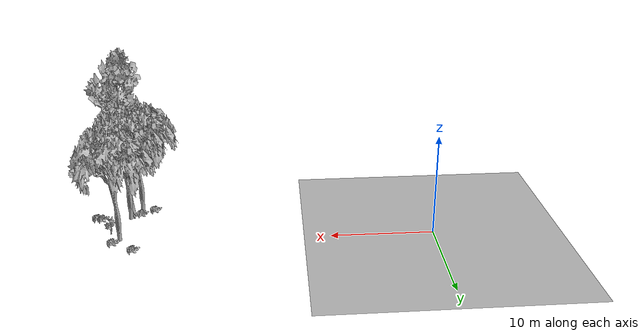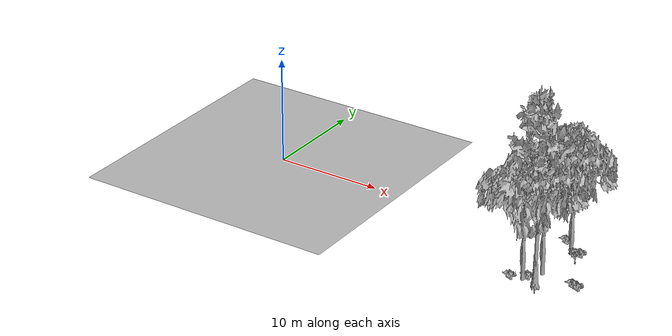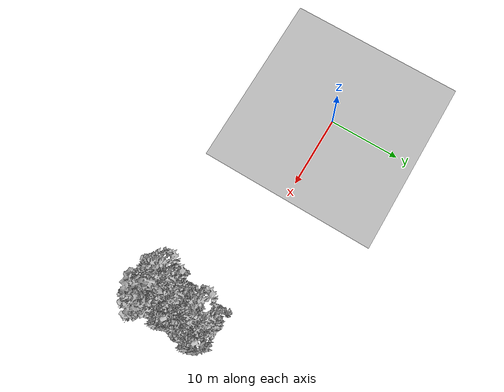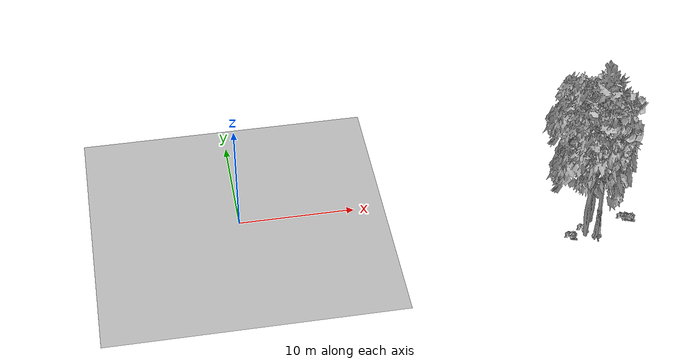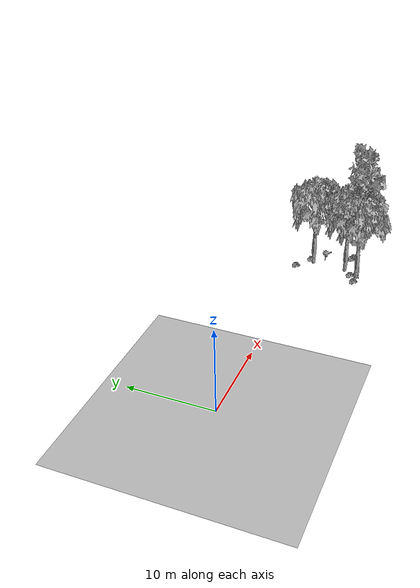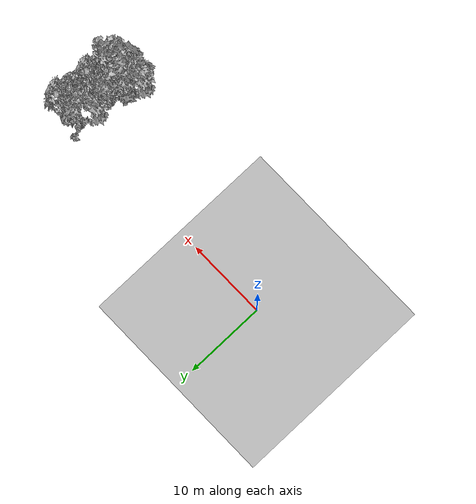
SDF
<sdf version="1.7">
 <world name="default">
  <model name="ground_plane">
   <static>1</static>
   <link name="link">
    <collision name="collision">
     <pose>-50 0 0 0 -0 0</pose>
     <geometry><plane><normal>0 0 1</normal><size>80 80</size></plane></geometry>
     <surface><contact><ode><min_depth>0.01</min_depth><max_vel>0</max_vel></ode></contact></surface>
    </collision>
    <visual name="grass">
     <cast_shadows>0</cast_shadows>
     <geometry>
      <mesh>
       <scale>0.46714285714285714 0.46714285714285714 0.1</scale>
       <uri>file://grass_plane/meshes/grass_plane.dae</uri>
      </mesh>
     </geometry>
    </visual>
   </link>
  </model>
  <model name="Tree 42">
   <static>1</static>
   <pose>29.7559329313018 -4.9899685488451055 0 1.57079 -0 0</pose>
   <link name="link">
    <collision name="collision">
     <geometry><mesh><scale>3.5 5 3.5</scale><uri>model://tree_2/meshes/tree_2.obj</uri></mesh></geometry>
    </collision>
    <visual name="visual">
     <geometry><mesh><scale>3.5 5 3.5</scale><uri>model://tree_2/meshes/tree_2.obj</uri></mesh></geometry>
    </visual>
   </link>
  </model>
  <model name="Tree 169">
   <static>1</static>
   <pose>28.817974115421677 -6.662616686552326 0 1.57079 -0 0</pose>
   <link name="link">
    <collision name="collision">
     <geometry><mesh><scale>3.5 5 3.5</scale><uri>model://tree_2/meshes/tree_2.obj</uri></mesh></geometry>
    </collision>
    <visual name="visual">
     <geometry><mesh><scale>3.5 5 3.5</scale><uri>model://tree_2/meshes/tree_2.obj</uri></mesh></geometry>
    </visual>
   </link>
  </model>
  <model name="Tree 246">
   <static>1</static>
   <pose>30.159187894923065 -0.7313742556839173 0 1.57079 -0 0</pose>
   <link name="link">
    <collision name="collision">
     <geometry><mesh><scale>3.5 5 3.5</scale><uri>model://tree_2/meshes/tree_2.obj</uri></mesh></geometry>
    </collision>
    <visual name="visual">
     <geometry><mesh><scale>3.5 5 3.5</scale><uri>model://tree_2/meshes/tree_2.obj</uri></mesh></geometry>
    </visual>
   </link>
  </model>
  <model name="Tree 558">
   <static>1</static>
   <pose>30.01184816480513 -6.49886981568433 0 1.57079 -0 0</pose>
   <link name="link">
    <collision name="collision">
     <geometry><mesh><scale>3.5 5 3.5</scale><uri>model://tree_9/meshes/tree_9.obj</uri></mesh></geometry>
    </collision>
    <visual name="visual">
     <geometry><mesh><scale>3.5 5 3.5</scale><uri>model://tree_9/meshes/tree_9.obj</uri></mesh></geometry>
    </visual>
   </link>
  </model>
  <model name="Bush 43">
   <static>1</static>
   <pose>30.846968773828905 -0.27074971262062775 0 1.57079 -0 0</pose>
   <link name="link">
    <collision name="collision">
     <geometry><mesh><scale>2 2 2</scale><uri>model://bush_2/meshes/bush_2.obj</uri></mesh></geometry>
     <surface><contact><collide_without_contact>false</collide_without_contact></contact></surface>
    </collision>
    <visual name="visual">
     <geometry><mesh><scale>2 2 2</scale><uri>model://bush_2/meshes/bush_2.obj</uri></mesh></geometry>
    </visual>
   </link>
  </model>
  <model name="Bush 141">
   <static>1</static>
   <pose>27.66163103141338 -6.652623228825341 0 1.57079 -0 0</pose>
   <link name="link">
    <collision name="collision">
     <geometry><mesh><scale>2 2 2</scale><uri>model://bush_2/meshes/bush_2.obj</uri></mesh></geometry>
     <surface><contact><collide_without_contact>false</collide_without_contact></contact></surface>
    </collision>
    <visual name="visual">
     <geometry><mesh><scale>2 2 2</scale><uri>model://bush_2/meshes/bush_2.obj</uri></mesh></geometry>
    </visual>
   </link>
  </model>
  <model name="Bush 166">
   <static>1</static>
   <pose>28.91299041967467 -5.92099216370795 0 1.57079 -0 0</pose>
   <link name="link">
    <collision name="collision">
     <geometry><mesh><scale>2 2 2</scale><uri>model://bush_2/meshes/bush_2.obj</uri></mesh></geometry>
     <surface><contact><collide_without_contact>false</collide_without_contact></contact></surface>
    </collision>
    <visual name="visual">
     <geometry><mesh><scale>2 2 2</scale><uri>model://bush_2/meshes/bush_2.obj</uri></mesh></geometry>
    </visual>
   </link>
  </model>
  <model name="Bush 310">
   <static>1</static>
   <pose>32.716672501763725 -5.085914230437389 0 1.57079 -0 0</pose>
   <link name="link">
    <collision name="collision">
     <geometry><mesh><scale>2 2 2</scale><uri>model://bush_2/meshes/bush_2.obj</uri></mesh></geometry>
     <surface><contact><collide_without_contact>false</collide_without_contact></contact></surface>
    </collision>
    <visual name="visual">
     <geometry><mesh><scale>2 2 2</scale><uri>model://bush_2/meshes/bush_2.obj</uri></mesh></geometry>
    </visual>
   </link>
  </model>
  <model name="Bush 458">
   <static>1</static>
   <pose>28.747567812302478 1.140676969856436 0 1.57079 -0 0</pose>
   <link name="link">
    <collision name="collision">
     <geometry><mesh><scale>2 2 2</scale><uri>model://bush_2/meshes/bush_2.obj</uri></mesh></geometry>
     <surface><contact><collide_without_contact>false</collide_without_contact></contact></surface>
    </collision>
    <visual name="visual">
     <geometry><mesh><scale>2 2 2</scale><uri>model://bush_2/meshes/bush_2.obj</uri></mesh></geometry>
    </visual>
   </link>
  </model>
  <model name="Bush 574">
   <static>1</static>
   <pose>31.309565716949734 -1.9658730382301854 0 1.57079 -0 0</pose>
   <link name="link">
    <collision name="collision">
     <geometry><mesh><scale>2 2 2</scale><uri>model://bush_5/meshes/bush_5.obj</uri></mesh></geometry>
     <surface><contact><collide_without_contact>false</collide_without_contact></contact></surface>
    </collision>
    <visual name="visual">
     <geometry><mesh><scale>2 2 2</scale><uri>model://bush_5/meshes/bush_5.obj</uri></mesh></geometry>
    </visual>
   </link>
  </model>
  <model name="Bush 629">
   <static>1</static>
   <pose>33.232400254680854 -5.260059339078268 0 1.57079 -0 0</pose>
   <link name="link">
    <collision name="collision">
     <geometry><mesh><scale>2 2 2</scale><uri>model://bush_2/meshes/bush_2.obj</uri></mesh></geometry>
     <surface><contact><collide_without_contact>false</collide_without_contact></contact></surface>
    </collision>
    <visual name="visual">
     <geometry><mesh><scale>2 2 2</scale><uri>model://bush_2/meshes/bush_2.obj</uri></mesh></geometry>
    </visual>
   </link>
  </model>
 </world>
</sdf>
